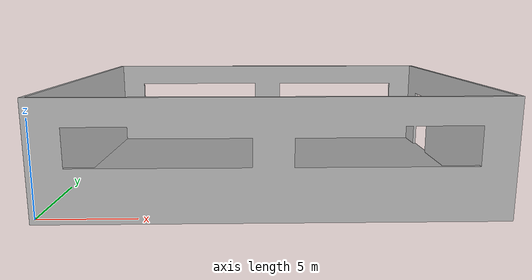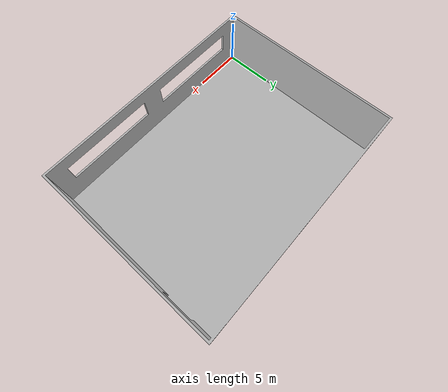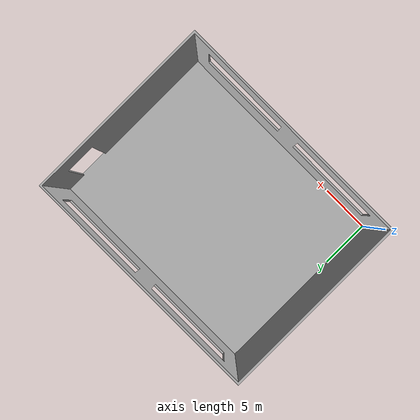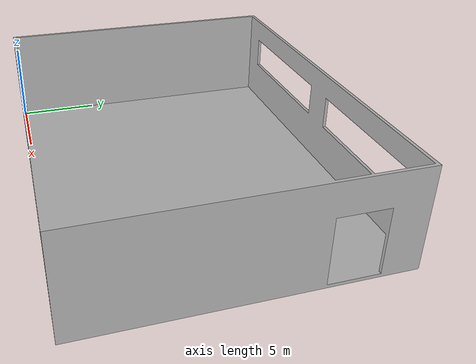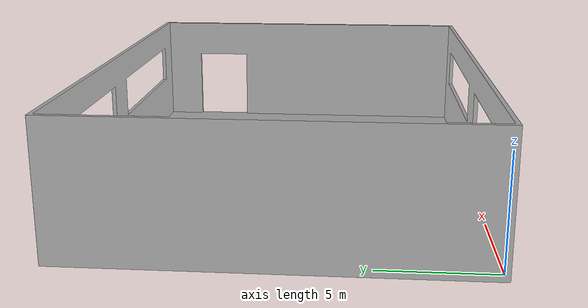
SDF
<?xml version='1.0'?>
<sdf version='1.7'>
  <model name='warehouse'>
    <static>true</static>
    <link name="building">
      <visual name="visual">
        <geometry>
            <mesh>
                <uri>meshes/textured_warehouse.dae</uri>
            </mesh>
        </geometry>
      </visual>
      <collision name="collision">
        <geometry>
            <mesh>
                <uri>meshes/warehouse.dae</uri>
            </mesh>
        </geometry>
      </collision>
    </link>
  </model>
</sdf>
